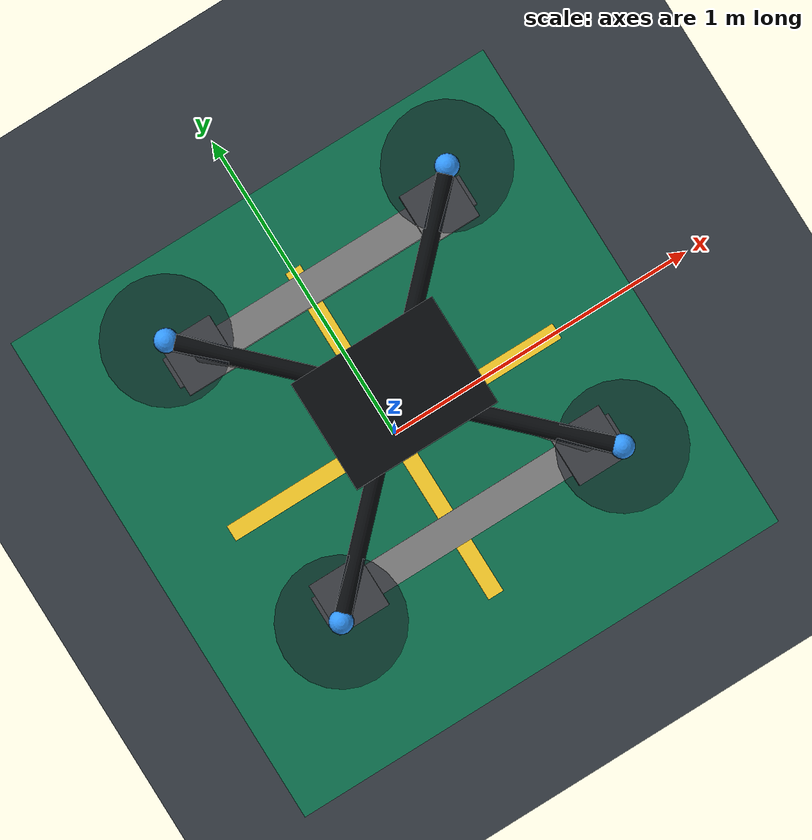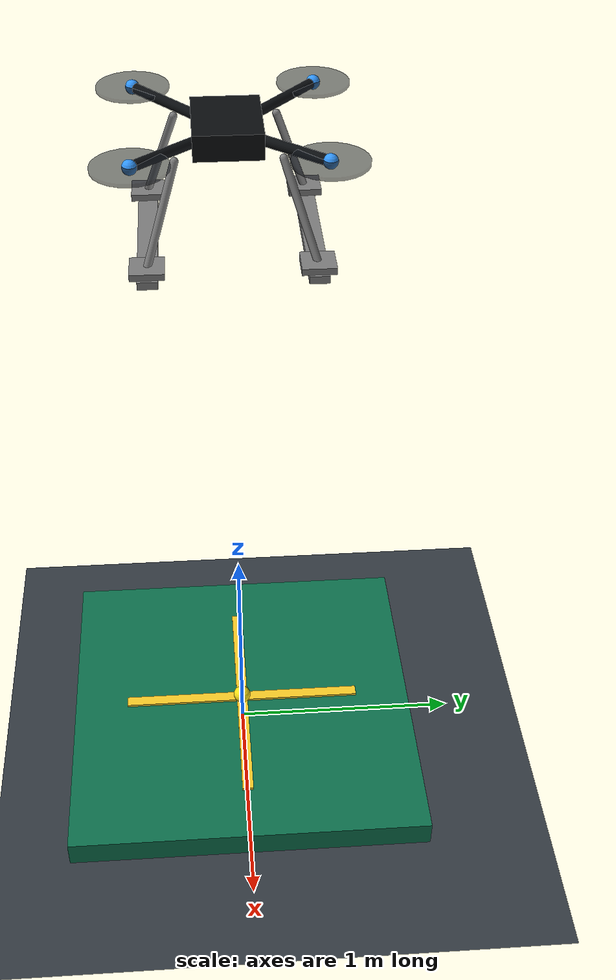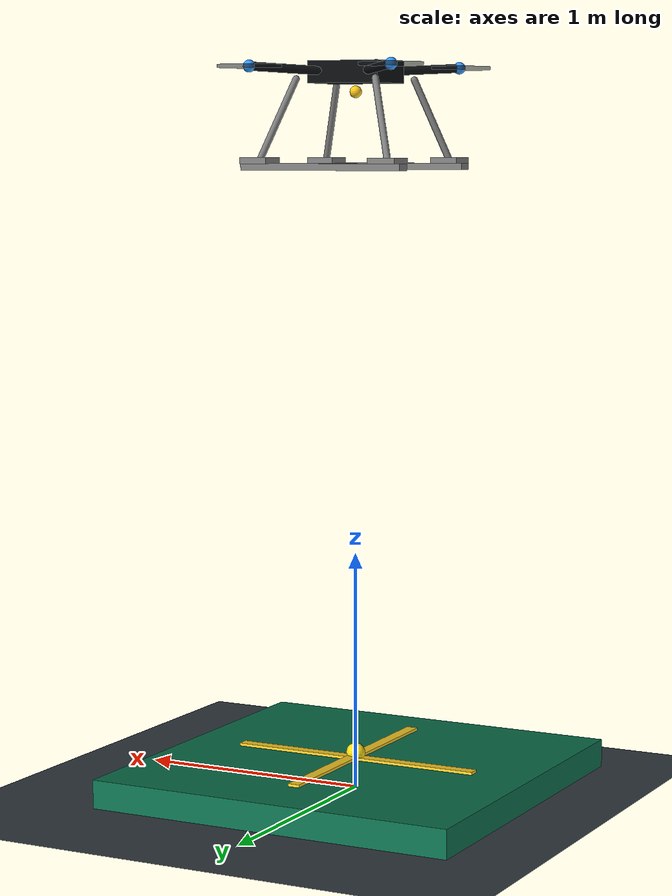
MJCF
<mujoco model="quadrotor_moving_platform_landing">
  <compiler angle="radian" coordinate="local" inertiafromgeom="true"/>
  <option timestep="0.002" gravity="0 0 -9.81" integrator="RK4" cone="elliptic"/>
  <visual>
    <global offwidth="1280" offheight="720"/>
  </visual>

  <default>
    <geom condim="4" friction="1.1 0.02 0.001" solref="0.008 1" solimp="0.95 0.99 0.001"/>
    <joint damping="0.02"/>
  </default>

  <asset>
    <texture name="grid" type="2d" builtin="checker" width="512" height="512"
             rgb1="0.18 0.20 0.23" rgb2="0.24 0.27 0.30"/>
    <material name="ground_grid" texture="grid" texrepeat="10 10" reflectance="0.15"/>
    <material name="carbon" rgba="0.04 0.05 0.06 1"/>
    <material name="rotor" rgba="0.08 0.10 0.13 0.55"/>
    <material name="platform_green" rgba="0.05 0.45 0.31 1"/>
    <material name="landing_mark" rgba="1.0 0.82 0.16 1"/>
  </asset>

  <worldbody>
    <light name="key" pos="0 -4 7" dir="0 0 -1" diffuse="0.9 0.9 0.9"/>
    <light name="fill" pos="-4 3 5" dir="0 0 -1" diffuse="0.35 0.4 0.45"/>
    <geom name="ground" type="plane" size="12 12 0.1" material="ground_grid"/>

    <body name="platform" mocap="true" pos="0 0 0.06">
      <geom name="platform_deck" type="box" size="0.8 0.8 0.06" material="platform_green"
            mass="100" contype="1" conaffinity="1" friction="5.0 0.25 0.05"/>
      <geom name="platform_marker_x" type="box" size="0.55 0.025 0.006" pos="0 0 0.067"
            material="landing_mark" contype="0" conaffinity="0"/>
      <geom name="platform_marker_y" type="box" size="0.025 0.55 0.006" pos="0 0 0.074"
            material="landing_mark" contype="0" conaffinity="0"/>
      <site name="landing_center" pos="0 0 0.09" size="0.04" rgba="1 0.9 0.1 1"/>
    </body>

    <body name="quadrotor" pos="0 0 3.0" quat="1 0 0 0">
      <freejoint name="quad_free"/>
      <inertial pos="0 0 0" mass="1.25" diaginertia="0.022 0.022 0.040"/>

      <geom name="quad_body" type="box" size="0.16 0.12 0.045" material="carbon"
            mass="0.75" contype="1" conaffinity="1"/>
      <geom name="arm_fl" type="capsule" fromto="0.05 0.05 0 0.32 0.32 0.02" size="0.018"
            material="carbon" mass="0.05" contype="0" conaffinity="0"/>
      <geom name="arm_fr" type="capsule" fromto="0.05 -0.05 0 0.32 -0.32 0.02" size="0.018"
            material="carbon" mass="0.05" contype="0" conaffinity="0"/>
      <geom name="arm_rl" type="capsule" fromto="-0.05 0.05 0 -0.32 0.32 0.02" size="0.018"
            material="carbon" mass="0.05" contype="0" conaffinity="0"/>
      <geom name="arm_rr" type="capsule" fromto="-0.05 -0.05 0 -0.32 -0.32 0.02" size="0.018"
            material="carbon" mass="0.05" contype="0" conaffinity="0"/>

      <geom name="rotor_fl" type="cylinder" pos="0.32 0.32 0.02" size="0.13 0.006"
            material="rotor" mass="0.025" contype="0" conaffinity="0"/>
      <geom name="rotor_fr" type="cylinder" pos="0.32 -0.32 0.02" size="0.13 0.006"
            material="rotor" mass="0.025" contype="0" conaffinity="0"/>
      <geom name="rotor_rl" type="cylinder" pos="-0.32 0.32 0.02" size="0.13 0.006"
            material="rotor" mass="0.025" contype="0" conaffinity="0"/>
      <geom name="rotor_rr" type="cylinder" pos="-0.32 -0.32 0.02" size="0.13 0.006"
            material="rotor" mass="0.025" contype="0" conaffinity="0"/>

      <site name="motor_fl" pos="0.32 0.32 0.02" size="0.025" rgba="0.2 0.6 1 1"/>
      <site name="motor_fr" pos="0.32 -0.32 0.02" size="0.025" rgba="0.2 0.6 1 1"/>
      <site name="motor_rl" pos="-0.32 0.32 0.02" size="0.025" rgba="0.2 0.6 1 1"/>
      <site name="motor_rr" pos="-0.32 -0.32 0.02" size="0.025" rgba="0.2 0.6 1 1"/>

      <geom name="leg_fl" type="capsule" fromto="0.18 0.18 -0.03 0.29 0.29 -0.36"
            size="0.014" mass="0.03" contype="1" conaffinity="1"/>
      <geom name="leg_fr" type="capsule" fromto="0.18 -0.18 -0.03 0.29 -0.29 -0.36"
            size="0.014" mass="0.03" contype="1" conaffinity="1"/>
      <geom name="leg_rl" type="capsule" fromto="-0.18 0.18 -0.03 -0.29 0.29 -0.36"
            size="0.014" mass="0.03" contype="1" conaffinity="1"/>
      <geom name="leg_rr" type="capsule" fromto="-0.18 -0.18 -0.03 -0.29 -0.29 -0.36"
            size="0.014" mass="0.03" contype="1" conaffinity="1"/>
      <geom name="foot_fl" type="box" pos="0.29 0.29 -0.36" size="0.06 0.06 0.012"
            mass="0.015" contype="1" conaffinity="1" friction="5.5 0.30 0.08"/>
      <geom name="foot_fr" type="box" pos="0.29 -0.29 -0.36" size="0.06 0.06 0.012"
            mass="0.015" contype="1" conaffinity="1" friction="5.5 0.30 0.08"/>
      <geom name="foot_rl" type="box" pos="-0.29 0.29 -0.36" size="0.06 0.06 0.012"
            mass="0.015" contype="1" conaffinity="1" friction="5.5 0.30 0.08"/>
      <geom name="foot_rr" type="box" pos="-0.29 -0.29 -0.36" size="0.06 0.06 0.012"
            mass="0.015" contype="1" conaffinity="1" friction="5.5 0.30 0.08"/>
      <geom name="skid_left" type="box" pos="0 0.29 -0.385" size="0.36 0.035 0.014"
            mass="0.04" contype="1" conaffinity="1" friction="6.0 0.35 0.10"/>
      <geom name="skid_right" type="box" pos="0 -0.29 -0.385" size="0.36 0.035 0.014"
            mass="0.04" contype="1" conaffinity="1" friction="6.0 0.35 0.10"/>
      <site name="downward_camera_mount" pos="0 0 -0.08" size="0.025" rgba="1 0.8 0.1 1"/>
      <camera name="downward" mode="fixed" pos="0 0 -0.08" fovy="85"/>
      <camera name="tracking" mode="trackcom" pos="-4 -5 3" xyaxes="0.78 -0.63 0 0.28 0.35 0.89"/>
    </body>
  </worldbody>
</mujoco>
